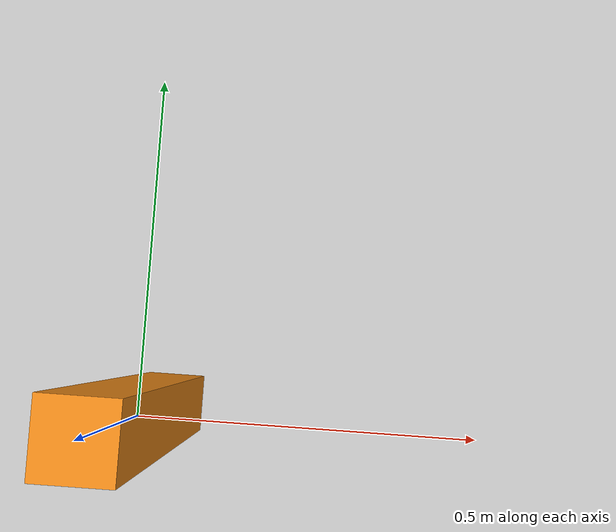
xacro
<?xml version="1.0"?>
<!-- Revolute-Revolute Manipulator -->
<robot name="rrbot" xmlns:xacro="http://www.ros.org/wiki/xacro">

  <!-- Constants for robot dimensions -->
  <xacro:property name="PI" value="3.1415926535897931"/>
  <xacro:property name="mass" value="1" /> <!-- arbitrary value for mass -->
  <xacro:property name="width" value="0.1" /> <!-- Square dimensions (widthxwidth) of beams -->
  <xacro:property name="height1" value="1" /> <!-- Link 1 -->
  <xacro:property name="height3" value="1" /> <!-- Link 3 -->
  <xacro:property name="camera_link" value="0.05" /> <!-- Size of square 'camera' box -->
  <xacro:property name="axel_offset" value="0.05" /> <!-- Space btw top of beam and the each joint -->

  <!-- Import all Gazebo-customization elements, including Gazebo colors -->
  <xacro:include filename="$(find rrbot_description)/urdf/rrbot.gazebo" />
  <!-- Import Rviz colors -->
  <xacro:include filename="$(find rrbot_description)/urdf/materials.xacro" />

  <!-- Used for fixing robot to Gazebo 'base_link' -->
  <link name="world"/>

  <joint name="fixed" type="fixed">
    <parent link="world"/>
    <child link="link1"/>
  </joint>

  <!-- Base Link -->
  <link name="link1">

    <visual>
      <origin xyz="0 0 0" rpy="0 0 0"/>
      <geometry>
	<box size="${width} ${width} ${height1}"/>
      </geometry>
      <material name="orange"/>
    </visual>

    <inertial>
      <origin xyz="0 0 0" rpy="0 0 0"/>
      <mass value="${mass}"/>
      <inertia
        ixx="1" ixy="0.0" ixz="0.0"
        iyy="1" iyz="0.0"
        izz="1"/>
    </inertial>
  </link>

  <joint name="camera_joint" type="fixed">
    <axis xyz="0 1 0" />
    <origin xyz="0 0 0" rpy="0 0 0"/>
    <parent link="link1"/>
    <child link="camera_link"/>
  </joint>

  <!-- Camera -->
  <link name="camera_link">
    <visual>
      <origin xyz="0 0 0" rpy="0 0 0"/>
      <geometry>
	<box size="${camera_link} ${camera_link} ${camera_link}"/>
      </geometry>
      <material name="red"/>
    </visual>

  </link>

  <!-- generate an optical frame http://www.ros.org/reps/rep-0103.html#suffix-frames
      so that ros and opencv can operate on the camera frame correctly -->
  <joint name="camera_optical_joint" type="fixed">
    <!-- these values have to be these values otherwise the gazebo camera image
        won't be aligned properly with the frame it is supposedly originating from -->
    <origin xyz="0 0 0" rpy="${-pi/2} 0 ${-pi/2}"/>
    <parent link="camera_link"/>
    <child link="camera_link_optical"/>
  </joint>

  <link name="camera_link_optical">
  </link>

</robot>
